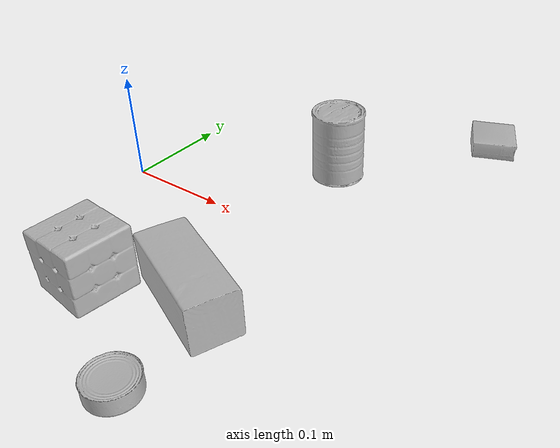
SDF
<sdf version="1.4">
  <world name="default">
    <light name="light1" type="point">
      <pose>0 0 1 0 0 0</pose>
      <diffuse>3 3 3 1</diffuse>
      <specular>3 3 3 1</specular>
    </light>
    <light name="light2" type="point">
      <pose>0 0.5 2 0 0 0</pose>
      <diffuse>1 1 1 1</diffuse>
      <specular>1 1 1 1</specular>
    </light>
    <light name="light3" type="point">
      <pose>0 0.5 2 0 0 0</pose>
      <diffuse>3 3 3 1</diffuse>
      <specular>3 3 3 1</specular>
    </light>
    <scene>
      <ambient>0.7 0.7 0.7</ambient>
    </scene>
    <model name="box1">
      <link name="link_box1">
        <collision name="default">
          <geometry>
            <mesh>
              <uri>model://rubiks_cube/collision_meshes/collision.obj</uri>
              <scale>1.0 1.0 1.0</scale>
            </mesh>
          </geometry>
          <surface>
            <friction>
              <ode>
                <mu>0.5</mu>
                <mu2>0.5</mu2>
              </ode>
            </friction>
          <contact>
        <ode>
            <max_vel>0</max_vel>
            <min_depth>0.0001</min_depth>
            <kp>1e8</kp>
        </ode>
    </contact></surface>
        </collision>
        <visual name="default">
          <geometry>
            <mesh>
              <uri>model://rubiks_cube/visual_meshes/visual.dae</uri>
              <scale>1.0 1.0 1.0</scale>
            </mesh>
          </geometry>
        </visual>
        <inertial>
          <mass>0.19534927606582642</mass>
          <pose>2.6721041649580002e-05 5.256967051536776e-05 -7.264316082000732e-06 -0.05467254413799041 -0.09813991388320625 -0.034457004790174134</pose>
          <inertia>
            <ixx>0.0001079436</ixx>
            <iyy>0.00010744019</iyy>
            <izz>0.000108838074</izz>
            <ixy>0</ixy>
            <ixz>0</ixz>
            <iyz>0</iyz>
          </inertia>
        </inertial>
      </link>
      <pose>0.09841858595609665 -0.143871009349823 0.02867898903787136 -2.797196865770408e-06 -7.833165615074575e-07 -0.08925478619732335</pose>
    </model>
    <model name="box2">
      <link name="link_box2">
        <collision name="default">
          <geometry>
            <mesh>
              <uri>model://pudding_box/collision_meshes/collision.obj</uri>
              <scale>0.5 0.5 0.5</scale>
            </mesh>
          </geometry>
          <surface>
            <friction>
              <ode>
                <mu>0.5</mu>
                <mu2>0.5</mu2>
              </ode>
            </friction>
          <contact>
        <ode>
            <max_vel>0</max_vel>
            <min_depth>0.0001</min_depth>
            <kp>1e8</kp>
        </ode>
    </contact></surface>
        </collision>
        <visual name="default">
          <geometry>
            <mesh>
              <uri>model://pudding_box/visual_meshes/visual.dae</uri>
              <scale>0.5 0.5 0.5</scale>
            </mesh>
          </geometry>
        </visual>
        <inertial>
          <mass>0.04727919027209282</mass>
          <pose>0.00024474109522998333 0.00040339428232982755 -0.0002594413817860186 0.0052131013240192415 -0.0066037977924420415 0.020079828889419827</pose>
          <inertia>
            <ixx>1.3361672e-05</ixx>
            <iyy>8.9898285e-06</iyy>
            <izz>1.9732002e-05</izz>
            <ixy>0</ixy>
            <ixz>0</ixz>
            <iyz>0</iyz>
          </inertia>
        </inertial>
      </link>
      <pose>0.2683556079864502 0.2494315207004547 0.009862903505563736 0.022348500724530068 -0.01139175141139558 -2.715866703268052</pose>
    </model>
    <model name="box3">
      <link name="link_box3">
        <collision name="default">
          <geometry>
            <mesh>
              <uri>model://wood_block/collision_meshes/collision.obj</uri>
              <scale>0.5 0.5 0.5</scale>
            </mesh>
          </geometry>
          <surface>
            <friction>
              <ode>
                <mu>0.5</mu>
                <mu2>0.5</mu2>
              </ode>
            </friction>
          <contact>
        <ode>
            <max_vel>0</max_vel>
            <min_depth>0.0001</min_depth>
            <kp>1e8</kp>
        </ode>
    </contact></surface>
        </collision>
        <visual name="default">
          <geometry>
            <mesh>
              <uri>model://wood_block/visual_meshes/visual.dae</uri>
              <scale>0.5 0.5 0.5</scale>
            </mesh>
          </geometry>
        </visual>
        <inertial>
          <mass>0.3041442632675171</mass>
          <pose>-2.9066577553749084e-06 -0.000285404734313488 0.00013204291462898254 -0.05220823380361383 -0.0051926957206686235 -0.0068613778665259926</pose>
          <inertia>
            <ixx>0.00010174775</ixx>
            <iyy>0.0003214212</iyy>
            <izz>0.0003202189</izz>
            <ixy>0</ixy>
            <ixz>0</ixz>
            <iyz>0</iyz>
          </inertia>
        </inertial>
      </link>
      <pose>0.1793026477098465 -0.11424966901540756 0.022629262879490852 -0.005208581881536402 0.005718703366773107 2.7415568573730504</pose>
    </model>
    <model name="can1">
      <link name="link_can1">
        <collision name="default">
          <geometry>
            <mesh>
              <uri>model://master_chef_can/collision_meshes/collision.obj</uri>
              <scale>0.5 0.5 0.5</scale>
            </mesh>
          </geometry>
          <surface>
            <friction>
              <ode>
                <mu>0.5</mu>
                <mu2>0.5</mu2>
              </ode>
            </friction>
          <contact>
        <ode>
            <max_vel>0</max_vel>
            <min_depth>0.0001</min_depth>
            <kp>1e8</kp>
        </ode>
    </contact></surface>
        </collision>
        <visual name="default">
          <geometry>
            <mesh>
              <uri>model://master_chef_can/visual_meshes/visual.dae</uri>
              <scale>0.5 0.5 0.5</scale>
            </mesh>
          </geometry>
        </visual>
        <inertial>
          <mass>0.18719419836997986</mass>
          <pose>-4.661963976104744e-05 1.3926856468060578e-07 -5.0798327720258385e-05 -0.0017995099067415357 0.0006479319374111454 -0.6102582770449616</pose>
          <inertia>
            <ixx>0.0001098703</ixx>
            <iyy>0.00010906167</iyy>
            <izz>6.071174e-05</izz>
            <ixy>0</ixy>
            <ixz>0</ixz>
            <iyz>0</iyz>
          </inertia>
        </inertial>
      </link>
      <pose>0.1636759638786316 0.10994889587163925 0.03530198335647583 -1.1503471778979586e-06 -9.305895406727033e-07 2.02383733003025</pose>
    </model>
    <model name="can2">
      <link name="link_can2">
        <collision name="default">
          <geometry>
            <mesh>
              <uri>model://tuna_fish_can/collision_meshes/collision.obj</uri>
              <scale>0.5 0.5 0.5</scale>
            </mesh>
          </geometry>
          <surface>
            <friction>
              <ode>
                <mu>0.5</mu>
                <mu2>0.5</mu2>
              </ode>
            </friction>
          <contact>
        <ode>
            <max_vel>0</max_vel>
            <min_depth>0.0001</min_depth>
            <kp>1e8</kp>
        </ode>
    </contact></surface>
        </collision>
        <visual name="default">
          <geometry>
            <mesh>
              <uri>model://tuna_fish_can/visual_meshes/visual.dae</uri>
              <scale>0.5 0.5 0.5</scale>
            </mesh>
          </geometry>
        </visual>
        <inertial>
          <mass>0.011327341198921204</mass>
          <pose>-2.0361354472697712e-05 -7.256336175487377e-06 -0.0005269023822620511 -0.001794480782384504 0.00017159763230480823 0.24052991368062646</pose>
          <inertia>
            <ixx>1.5314733e-06</ixx>
            <iyy>1.52509e-06</iyy>
            <izz>2.6205691e-06</izz>
            <ixy>0</ixy>
            <ixz>0</ixz>
            <iyz>0</iyz>
          </inertia>
        </inertial>
      </link>
      <pose>0.1984773427248001 -0.20541222393512726 0.008520001545548439 9.033971689431816e-09 2.0160109207700282e-08 -1.2397382723167558</pose>
    </model>
  <physics type="ode">
      <max_contacts>50</max_contacts>
      <ode>
        <solver>
          <type>quick</type>
          <iters>75</iters>
        </solver>
        <constraints>
          <contact_max_correcting_vel>0</contact_max_correcting_vel>
          <contact_surface_layer>0</contact_surface_layer>
        </constraints>
      </ode>
    </physics></world>
</sdf>
